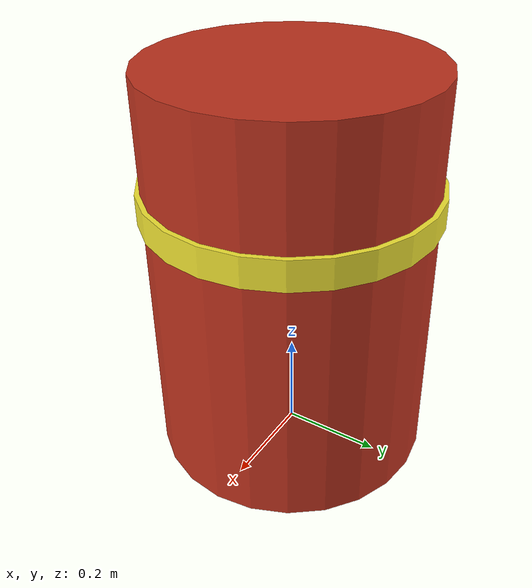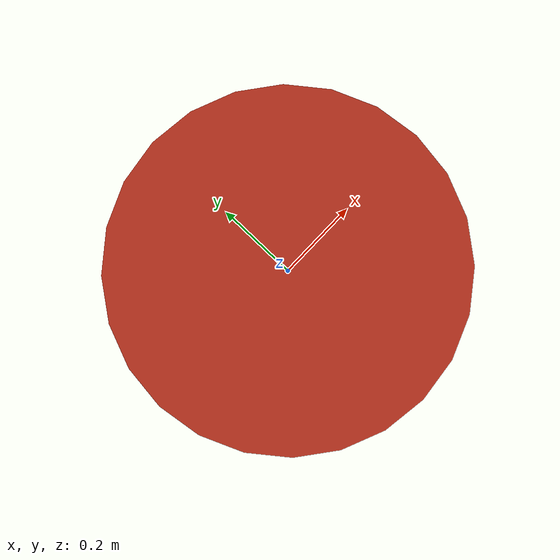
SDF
<?xml version="1.0"?>
<sdf version="1.8">
  <model name="simple_barrel">
    <static>true</static>
    <link name="link">
      <pose>0 0 0.4 0 0 0</pose>
      <collision name="col">
        <geometry><cylinder><radius>0.28</radius><length>0.8</length></cylinder></geometry>
      </collision>
      <visual name="vis">
        <cast_shadows>false</cast_shadows>
        <geometry><cylinder><radius>0.28</radius><length>0.8</length></cylinder></geometry>
        <material>
          <ambient>0.55 0.15 0.1 1</ambient>
          <diffuse>0.75 0.2 0.12 1</diffuse>
        </material>
      </visual>
      <visual name="ring">
        <cast_shadows>false</cast_shadows>
        <pose>0 0 0.15 0 0 0</pose>
        <geometry><cylinder><radius>0.29</radius><length>0.06</length></cylinder></geometry>
        <material>
          <ambient>0.7 0.7 0.15 1</ambient>
          <diffuse>0.95 0.9 0.2 1</diffuse>
        </material>
      </visual>
    </link>
  </model>
</sdf>
